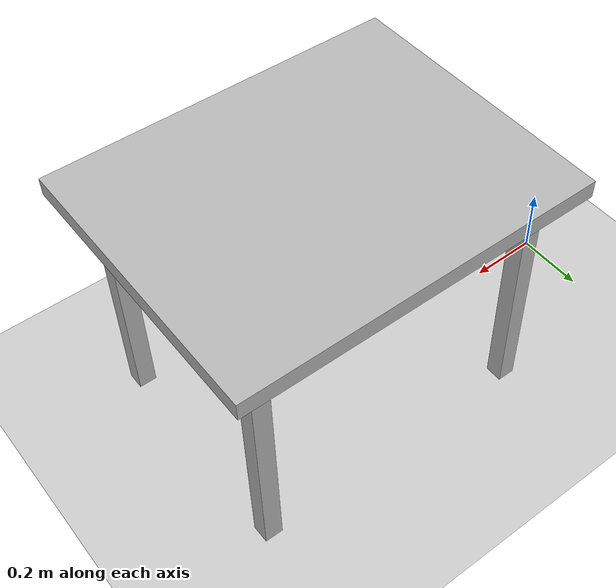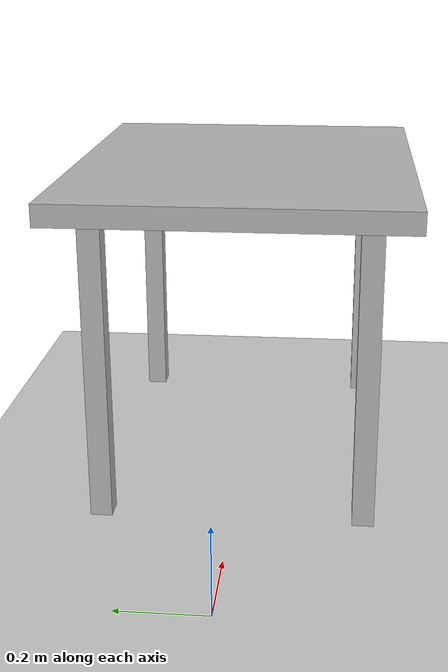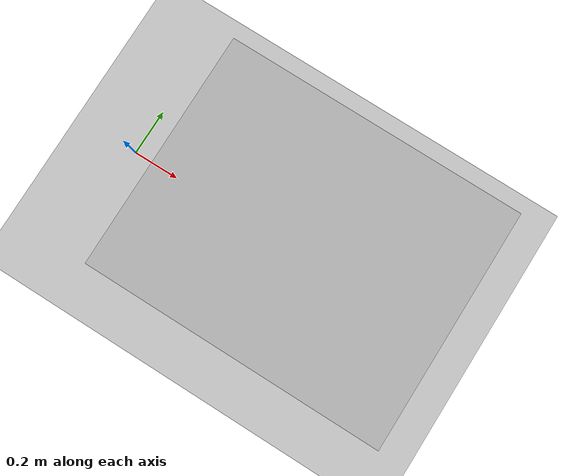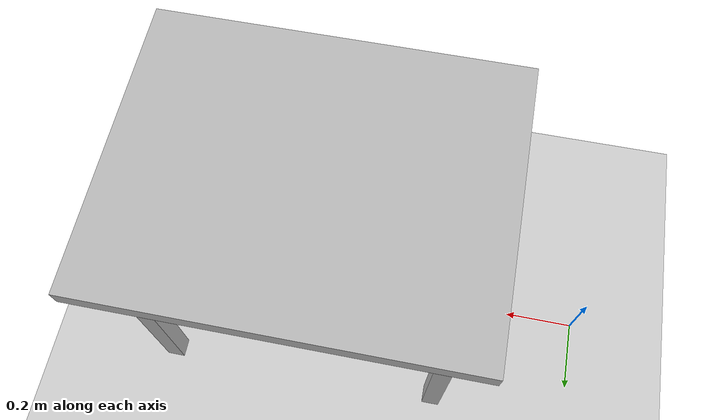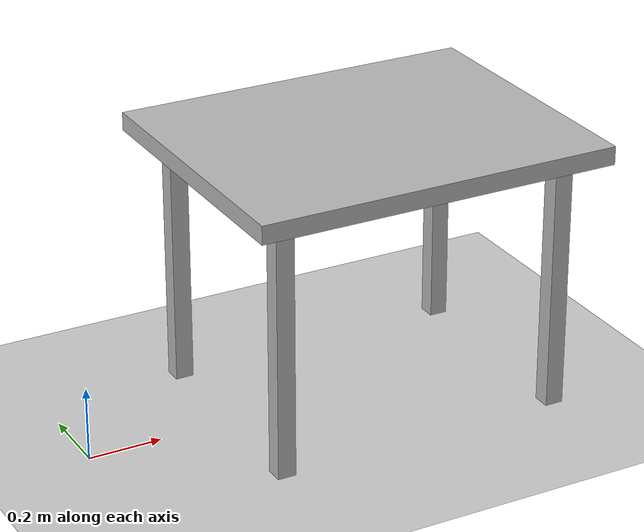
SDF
<?xml version="1.0" ?>
<sdf version="1.6">
  <world name="default">

    <!-- A global light source -->
    <include>
      <uri>model://sun</uri>
    </include>

    <!-- A ground plane -->
    <include>
      <uri>model://ground_plane</uri>
    </include>

    <!--          在这里定义我们的桌子模型                     -->
    <model name="table">
      <static>true</static> <!-- 设置为 true，桌子不会因为碰撞或重力移动 -->
      <pose>0.8 0 0 0 0 0</pose> <!-- 桌子中心的位置: x=0.8m, y=0, z=0, 旋转=0 -->

      <!-- 桌子腿 1 -->
      <link name="leg1">
        <pose>-0.4 -0.3 0.35 0 0 0</pose>
        <collision name="collision_leg1">
          <geometry><box><size>0.05 0.05 0.7</size></box></geometry>
        </collision>
        <visual name="visual_leg1">
          <geometry><box><size>0.05 0.05 0.7</size></box></geometry>
        </visual>
      </link>

      <!-- 桌子腿 2 -->
      <link name="leg2">
        <pose>0.4 -0.3 0.35 0 0 0</pose>
        <collision name="collision_leg2">
          <geometry><box><size>0.05 0.05 0.7</size></box></geometry>
        </collision>
        <visual name="visual_leg2">
          <geometry><box><size>0.05 0.05 0.7</size></box></geometry>
        </visual>
      </link>

      <!-- 桌子腿 3 -->
      <link name="leg3">
        <pose>-0.4 0.3 0.35 0 0 0</pose>
        <collision name="collision_leg3">
          <geometry><box><size>0.05 0.05 0.7</size></box></geometry>
        </collision>
        <visual name="visual_leg3">
          <geometry><box><size>0.05 0.05 0.7</size></box></geometry>
        </visual>
      </link>

      <!-- 桌子腿 4 -->
      <link name="leg4">
        <pose>0.4 0.3 0.35 0 0 0</pose>
        <collision name="collision_leg4">
          <geometry><box><size>0.05 0.05 0.7</size></box></geometry>
        </collision>
        <visual name="visual_leg4">
          <geometry><box><size>0.05 0.05 0.7</size></box></geometry>
        </visual>
      </link>

      <!-- 桌面 -->
      <link name="surface">
        <pose>0 0 0.725 0 0 0</pose> <!-- 桌面的中心在 z=0.725m 高度 -->
        <collision name="collision_surface">
          <geometry><box><size>1.0 0.8 0.05</size></box></geometry> <!-- 桌面尺寸：长1m, 宽0.8m, 厚0.05m -->
        </collision>
        <visual name="visual_surface">
          <geometry><box><size>1.0 0.8 0.05</size></box></geometry>
        </visual>
      </link>
    </model>

  </world>
</sdf>
